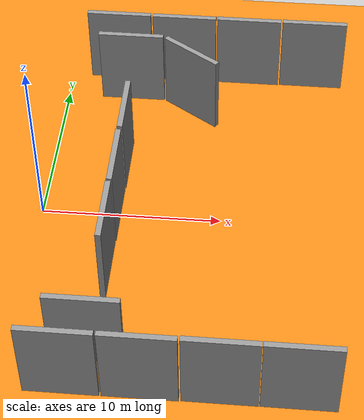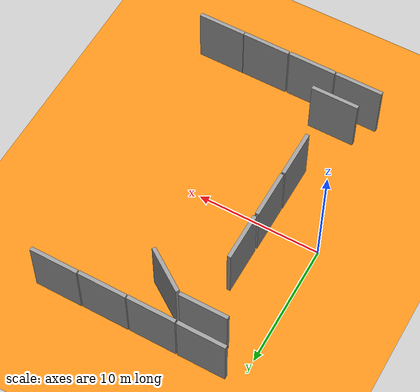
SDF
<sdf version="1.7">
 <world name="default">
  <model name="ground_plane">
   <static>1</static>
   <link name="link">
    <collision name="collision">
     <geometry><plane><normal>0 0 1</normal><size>100 100</size></plane></geometry>
     <surface>
      <contact><collide_bitmask>65535</collide_bitmask></contact>
      <friction><ode><mu>100</mu><mu2>50</mu2></ode></friction>
     </surface>
    </collision>
    <visual name="visual">
     <cast_shadows>0</cast_shadows>
     <geometry><plane><normal>0 0 1</normal><size>100 100</size></plane></geometry>
     <material>
      <script><uri>file://media/materials/scripts/gazebo.material</uri><name>Gazebo/Orange</name></script>
     </material>
    </visual>
   </link>
  </model>
  <model name="Wall1_clone_clone_0_clone_1">
   <link name="link_1">
    <inertial>
     <mass>5.76087</mass>
     <inertia><ixx>18.5128</ixx><ixy>0</ixy><ixz>0</ixz><iyy>11.4896</iyy><iyz>0</iyz><izz>7.11389</izz></inertia>
    </inertial>
    <pose>-0.387698 -7.91676 -1e-06 0 -0 1.56704</pose>
    <visual name="visual">
     <geometry><box><size>0.30743 3.83717 4.88248</size></box></geometry>
     <material>
      <lighting>1</lighting>
      <script><uri>file://media/materials/scripts/gazebo.material</uri><name>Gazebo/Grey</name></script>
      <shader type="pixel"/>
     </material>
    </visual>
    <collision name="collision">
     <geometry><box><size>0.30743 3.83717 4.88248</size></box></geometry>
     <surface>
      <friction>
       <ode><mu>1</mu><mu2>1</mu2><fdir1>0 0 0</fdir1><slip1>0</slip1><slip2>0</slip2></ode>
       <torsional>
        <coefficient>1</coefficient>
        <patch_radius>0</patch_radius>
        <surface_radius>0</surface_radius>
        <use_patch_radius>1</use_patch_radius>
        <ode><slip>0</slip></ode>
       </torsional>
      </friction>
      <bounce><restitution_coefficient>0</restitution_coefficient><threshold>1e+06</threshold></bounce>
      <contact>
       <collide_without_contact>0</collide_without_contact>
       <collide_without_contact_bitmask>1</collide_without_contact_bitmask>
       <collide_bitmask>1</collide_bitmask>
       <ode>
        <soft_cfm>0</soft_cfm>
        <soft_erp>0.2</soft_erp>
        <kp>1e+13</kp>
        <kd>1</kd>
        <max_vel>0.01</max_vel>
        <min_depth>0</min_depth>
       </ode>
       <bullet>
        <split_impulse>1</split_impulse>
        <split_impulse_penetration_threshold>-0.01</split_impulse_penetration_threshold>
        <soft_cfm>0</soft_cfm>
        <soft_erp>0.2</soft_erp>
        <kp>1e+13</kp>
        <kd>1</kd>
       </bullet>
      </contact>
     </surface>
    </collision>
   </link>
   <static>1</static>
   <pose>12.1571 -0.387014 2.43363 0 0 -1.56821</pose>
  </model>
  <model name="Wall1_clone_clone_0_clone">
   <link name="link_1">
    <inertial>
     <mass>5.76087</mass>
     <inertia><ixx>18.5128</ixx><ixy>0</ixy><ixz>0</ixz><iyy>11.4896</iyy><iyz>0</iyz><izz>7.11389</izz></inertia>
    </inertial>
    <pose>-0.387698 -7.91676 -1e-06 0 -0 1.56704</pose>
    <visual name="visual">
     <geometry><box><size>0.30743 3.83717 4.88248</size></box></geometry>
     <material>
      <lighting>1</lighting>
      <script><uri>file://media/materials/scripts/gazebo.material</uri><name>Gazebo/Grey</name></script>
      <shader type="pixel"/>
     </material>
    </visual>
    <collision name="collision">
     <geometry><box><size>0.30743 3.83717 4.88248</size></box></geometry>
     <surface>
      <friction>
       <ode><mu>1</mu><mu2>1</mu2><fdir1>0 0 0</fdir1><slip1>0</slip1><slip2>0</slip2></ode>
       <torsional>
        <coefficient>1</coefficient>
        <patch_radius>0</patch_radius>
        <surface_radius>0</surface_radius>
        <use_patch_radius>1</use_patch_radius>
        <ode><slip>0</slip></ode>
       </torsional>
      </friction>
      <bounce><restitution_coefficient>0</restitution_coefficient><threshold>1e+06</threshold></bounce>
      <contact>
       <collide_without_contact>0</collide_without_contact>
       <collide_without_contact_bitmask>1</collide_without_contact_bitmask>
       <collide_bitmask>1</collide_bitmask>
       <ode>
        <soft_cfm>0</soft_cfm>
        <soft_erp>0.2</soft_erp>
        <kp>1e+13</kp>
        <kd>1</kd>
        <max_vel>0.01</max_vel>
        <min_depth>0</min_depth>
       </ode>
       <bullet>
        <split_impulse>1</split_impulse>
        <split_impulse_penetration_threshold>-0.01</split_impulse_penetration_threshold>
        <soft_cfm>0</soft_cfm>
        <soft_erp>0.2</soft_erp>
        <kp>1e+13</kp>
        <kd>1</kd>
       </bullet>
      </contact>
     </surface>
    </collision>
   </link>
   <static>1</static>
   <pose>3.31561 -4.02634 2.43363 0 -0 0</pose>
  </model>
  <model name="Wall1_clone_clone_0_clone_clone">
   <link name="link_1">
    <inertial>
     <mass>5.76087</mass>
     <inertia><ixx>18.5128</ixx><ixy>0</ixy><ixz>0</ixz><iyy>11.4896</iyy><iyz>0</iyz><izz>7.11389</izz></inertia>
    </inertial>
    <pose>-0.387698 -7.91676 -1e-06 0 -0 1.56704</pose>
    <visual name="visual">
     <geometry><box><size>0.30743 3.83717 4.88248</size></box></geometry>
     <material>
      <lighting>1</lighting>
      <script><uri>file://media/materials/scripts/gazebo.material</uri><name>Gazebo/Grey</name></script>
      <shader type="pixel"/>
     </material>
    </visual>
    <collision name="collision">
     <geometry><box><size>0.30743 3.83717 4.88248</size></box></geometry>
     <surface>
      <friction>
       <ode><mu>1</mu><mu2>1</mu2><fdir1>0 0 0</fdir1><slip1>0</slip1><slip2>0</slip2></ode>
       <torsional>
        <coefficient>1</coefficient>
        <patch_radius>0</patch_radius>
        <surface_radius>0</surface_radius>
        <use_patch_radius>1</use_patch_radius>
        <ode><slip>0</slip></ode>
       </torsional>
      </friction>
      <bounce><restitution_coefficient>0</restitution_coefficient><threshold>1e+06</threshold></bounce>
      <contact>
       <collide_without_contact>0</collide_without_contact>
       <collide_without_contact_bitmask>1</collide_without_contact_bitmask>
       <collide_bitmask>1</collide_bitmask>
       <ode>
        <soft_cfm>0</soft_cfm>
        <soft_erp>0.2</soft_erp>
        <kp>1e+13</kp>
        <kd>1</kd>
        <max_vel>0.01</max_vel>
        <min_depth>0</min_depth>
       </ode>
       <bullet>
        <split_impulse>1</split_impulse>
        <split_impulse_penetration_threshold>-0.01</split_impulse_penetration_threshold>
        <soft_cfm>0</soft_cfm>
        <soft_erp>0.2</soft_erp>
        <kp>1e+13</kp>
        <kd>1</kd>
       </bullet>
      </contact>
     </surface>
    </collision>
   </link>
   <static>1</static>
   <pose>4.3285 -2.02303 2.43363 0 -0 0</pose>
  </model>
  <model name="Wall1_clone_clone_0_clone_clone_3">
   <link name="link_1">
    <inertial>
     <mass>5.76087</mass>
     <inertia><ixx>18.5128</ixx><ixy>0</ixy><ixz>0</ixz><iyy>11.4896</iyy><iyz>0</iyz><izz>7.11389</izz></inertia>
    </inertial>
    <pose>-0.387698 -7.91676 -1e-06 0 -0 1.56704</pose>
    <visual name="visual">
     <geometry><box><size>0.30743 3.83717 4.88248</size></box></geometry>
     <material>
      <lighting>1</lighting>
      <script><uri>file://media/materials/scripts/gazebo.material</uri><name>Gazebo/Grey</name></script>
      <shader type="pixel"/>
     </material>
    </visual>
    <collision name="collision">
     <geometry><box><size>0.30743 3.83717 4.88248</size></box></geometry>
     <surface>
      <friction>
       <ode><mu>1</mu><mu2>1</mu2><fdir1>0 0 0</fdir1><slip1>0</slip1><slip2>0</slip2></ode>
       <torsional>
        <coefficient>1</coefficient>
        <patch_radius>0</patch_radius>
        <surface_radius>0</surface_radius>
        <use_patch_radius>1</use_patch_radius>
        <ode><slip>0</slip></ode>
       </torsional>
      </friction>
      <bounce><restitution_coefficient>0</restitution_coefficient><threshold>1e+06</threshold></bounce>
      <contact>
       <collide_without_contact>0</collide_without_contact>
       <collide_without_contact_bitmask>1</collide_without_contact_bitmask>
       <collide_bitmask>1</collide_bitmask>
       <ode>
        <soft_cfm>0</soft_cfm>
        <soft_erp>0.2</soft_erp>
        <kp>1e+13</kp>
        <kd>1</kd>
        <max_vel>0.01</max_vel>
        <min_depth>0</min_depth>
       </ode>
       <bullet>
        <split_impulse>1</split_impulse>
        <split_impulse_penetration_threshold>-0.01</split_impulse_penetration_threshold>
        <soft_cfm>0</soft_cfm>
        <soft_erp>0.2</soft_erp>
        <kp>1e+13</kp>
        <kd>1</kd>
       </bullet>
      </contact>
     </surface>
    </collision>
   </link>
   <static>1</static>
   <pose>4.34502 18.0077 2.43363 0 -0 0</pose>
  </model>
  <model name="Wall1_clone_clone_0_clone_clone_4">
   <link name="link_1">
    <inertial>
     <mass>5.76087</mass>
     <inertia><ixx>18.5128</ixx><ixy>0</ixy><ixz>0</ixz><iyy>11.4896</iyy><iyz>0</iyz><izz>7.11389</izz></inertia>
    </inertial>
    <pose>-0.387698 -7.91676 -1e-06 0 -0 1.56704</pose>
    <visual name="visual">
     <geometry><box><size>0.30743 3.83717 4.88248</size></box></geometry>
     <material>
      <lighting>1</lighting>
      <script><uri>file://media/materials/scripts/gazebo.material</uri><name>Gazebo/Grey</name></script>
      <shader type="pixel"/>
     </material>
    </visual>
    <collision name="collision">
     <geometry><box><size>0.30743 3.83717 4.88248</size></box></geometry>
     <surface>
      <friction>
       <ode><mu>1</mu><mu2>1</mu2><fdir1>0 0 0</fdir1><slip1>0</slip1><slip2>0</slip2></ode>
       <torsional>
        <coefficient>1</coefficient>
        <patch_radius>0</patch_radius>
        <surface_radius>0</surface_radius>
        <use_patch_radius>1</use_patch_radius>
        <ode><slip>0</slip></ode>
       </torsional>
      </friction>
      <bounce><restitution_coefficient>0</restitution_coefficient><threshold>1e+06</threshold></bounce>
      <contact>
       <collide_without_contact>0</collide_without_contact>
       <collide_without_contact_bitmask>1</collide_without_contact_bitmask>
       <collide_bitmask>1</collide_bitmask>
       <ode>
        <soft_cfm>0</soft_cfm>
        <soft_erp>0.2</soft_erp>
        <kp>1e+13</kp>
        <kd>1</kd>
        <max_vel>0.01</max_vel>
        <min_depth>0</min_depth>
       </ode>
       <bullet>
        <split_impulse>1</split_impulse>
        <split_impulse_penetration_threshold>-0.01</split_impulse_penetration_threshold>
        <soft_cfm>0</soft_cfm>
        <soft_erp>0.2</soft_erp>
        <kp>1e+13</kp>
        <kd>1</kd>
       </bullet>
      </contact>
     </surface>
    </collision>
   </link>
   <static>1</static>
   <pose>3.39517 19.9942 2.43363 0 -0 0</pose>
  </model>
  <model name="Wall1_clone_clone_0_clone_clone_4_clone">
   <link name="link_1">
    <inertial>
     <mass>5.76087</mass>
     <inertia><ixx>18.5128</ixx><ixy>0</ixy><ixz>0</ixz><iyy>11.4896</iyy><iyz>0</iyz><izz>7.11389</izz></inertia>
    </inertial>
    <pose>-0.387698 -7.91676 -1e-06 0 -0 1.56704</pose>
    <visual name="visual">
     <geometry><box><size>0.30743 3.83717 4.88248</size></box></geometry>
     <material>
      <lighting>1</lighting>
      <script><uri>file://media/materials/scripts/gazebo.material</uri><name>Gazebo/Grey</name></script>
      <shader type="pixel"/>
     </material>
    </visual>
    <collision name="collision">
     <geometry><box><size>0.30743 3.83717 4.88248</size></box></geometry>
     <surface>
      <friction>
       <ode><mu>1</mu><mu2>1</mu2><fdir1>0 0 0</fdir1><slip1>0</slip1><slip2>0</slip2></ode>
       <torsional>
        <coefficient>1</coefficient>
        <patch_radius>0</patch_radius>
        <surface_radius>0</surface_radius>
        <use_patch_radius>1</use_patch_radius>
        <ode><slip>0</slip></ode>
       </torsional>
      </friction>
      <bounce><restitution_coefficient>0</restitution_coefficient><threshold>1e+06</threshold></bounce>
      <contact>
       <collide_without_contact>0</collide_without_contact>
       <collide_without_contact_bitmask>1</collide_without_contact_bitmask>
       <collide_bitmask>1</collide_bitmask>
       <ode>
        <soft_cfm>0</soft_cfm>
        <soft_erp>0.2</soft_erp>
        <kp>1e+13</kp>
        <kd>1</kd>
        <max_vel>0.01</max_vel>
        <min_depth>0</min_depth>
       </ode>
       <bullet>
        <split_impulse>1</split_impulse>
        <split_impulse_penetration_threshold>-0.01</split_impulse_penetration_threshold>
        <soft_cfm>0</soft_cfm>
        <soft_erp>0.2</soft_erp>
        <kp>1e+13</kp>
        <kd>1</kd>
       </bullet>
      </contact>
     </surface>
    </collision>
   </link>
   <static>1</static>
   <pose>7.3475 19.9738 2.43363 0 -0 0</pose>
  </model>
  <model name="Wall1_clone_clone_0_clone_clone_4_clone_1">
   <link name="link_1">
    <inertial>
     <mass>5.76087</mass>
     <inertia><ixx>18.5128</ixx><ixy>0</ixy><ixz>0</ixz><iyy>11.4896</iyy><iyz>0</iyz><izz>7.11389</izz></inertia>
    </inertial>
    <pose>-0.387698 -7.91676 -1e-06 0 -0 1.56704</pose>
    <visual name="visual">
     <geometry><box><size>0.30743 3.83717 4.88248</size></box></geometry>
     <material>
      <lighting>1</lighting>
      <script><uri>file://media/materials/scripts/gazebo.material</uri><name>Gazebo/Grey</name></script>
      <shader type="pixel"/>
     </material>
    </visual>
    <collision name="collision">
     <geometry><box><size>0.30743 3.83717 4.88248</size></box></geometry>
     <surface>
      <friction>
       <ode><mu>1</mu><mu2>1</mu2><fdir1>0 0 0</fdir1><slip1>0</slip1><slip2>0</slip2></ode>
       <torsional>
        <coefficient>1</coefficient>
        <patch_radius>0</patch_radius>
        <surface_radius>0</surface_radius>
        <use_patch_radius>1</use_patch_radius>
        <ode><slip>0</slip></ode>
       </torsional>
      </friction>
      <bounce><restitution_coefficient>0</restitution_coefficient><threshold>1e+06</threshold></bounce>
      <contact>
       <collide_without_contact>0</collide_without_contact>
       <collide_without_contact_bitmask>1</collide_without_contact_bitmask>
       <collide_bitmask>1</collide_bitmask>
       <ode>
        <soft_cfm>0</soft_cfm>
        <soft_erp>0.2</soft_erp>
        <kp>1e+13</kp>
        <kd>1</kd>
        <max_vel>0.01</max_vel>
        <min_depth>0</min_depth>
       </ode>
       <bullet>
        <split_impulse>1</split_impulse>
        <split_impulse_penetration_threshold>-0.01</split_impulse_penetration_threshold>
        <soft_cfm>0</soft_cfm>
        <soft_erp>0.2</soft_erp>
        <kp>1e+13</kp>
        <kd>1</kd>
       </bullet>
      </contact>
     </surface>
    </collision>
   </link>
   <static>1</static>
   <pose>7.24947 -4.03314 2.43363 0 -0 0</pose>
  </model>
  <model name="Wall1_clone_clone_0_clone_clone_3_clone">
   <link name="link_1">
    <inertial>
     <mass>5.76087</mass>
     <inertia><ixx>18.5128</ixx><ixy>0</ixy><ixz>0</ixz><iyy>11.4896</iyy><iyz>0</iyz><izz>7.11389</izz></inertia>
    </inertial>
    <pose>-0.387698 -7.91676 -1e-06 0 -0 1.56704</pose>
    <visual name="visual">
     <geometry><box><size>0.30743 3.83717 4.88248</size></box></geometry>
     <material>
      <lighting>1</lighting>
      <script><uri>file://media/materials/scripts/gazebo.material</uri><name>Gazebo/Grey</name></script>
      <shader type="pixel"/>
     </material>
    </visual>
    <collision name="collision">
     <geometry><box><size>0.30743 3.83717 4.88248</size></box></geometry>
     <surface>
      <friction>
       <ode><mu>1</mu><mu2>1</mu2><fdir1>0 0 0</fdir1><slip1>0</slip1><slip2>0</slip2></ode>
       <torsional>
        <coefficient>1</coefficient>
        <patch_radius>0</patch_radius>
        <surface_radius>0</surface_radius>
        <use_patch_radius>1</use_patch_radius>
        <ode><slip>0</slip></ode>
       </torsional>
      </friction>
      <bounce><restitution_coefficient>0</restitution_coefficient><threshold>1e+06</threshold></bounce>
      <contact>
       <collide_without_contact>0</collide_without_contact>
       <collide_without_contact_bitmask>1</collide_without_contact_bitmask>
       <collide_bitmask>1</collide_bitmask>
       <ode>
        <soft_cfm>0</soft_cfm>
        <soft_erp>0.2</soft_erp>
        <kp>1e+13</kp>
        <kd>1</kd>
        <max_vel>0.01</max_vel>
        <min_depth>0</min_depth>
       </ode>
       <bullet>
        <split_impulse>1</split_impulse>
        <split_impulse_penetration_threshold>-0.01</split_impulse_penetration_threshold>
        <soft_cfm>0</soft_cfm>
        <soft_erp>0.2</soft_erp>
        <kp>1e+13</kp>
        <kd>1</kd>
       </bullet>
      </contact>
     </surface>
    </collision>
   </link>
   <static>1</static>
   <pose>11.268 19.9739 2.43363 0 -0 0</pose>
  </model>
  <model name="Wall1_clone_clone_0_clone_clone_3_clone_0">
   <link name="link_1">
    <inertial>
     <mass>5.76087</mass>
     <inertia><ixx>18.5128</ixx><ixy>0</ixy><ixz>0</ixz><iyy>11.4896</iyy><iyz>0</iyz><izz>7.11389</izz></inertia>
    </inertial>
    <pose>-0.387698 -7.91676 -1e-06 0 -0 1.56704</pose>
    <visual name="visual">
     <geometry><box><size>0.30743 3.83717 4.88248</size></box></geometry>
     <material>
      <lighting>1</lighting>
      <script><uri>file://media/materials/scripts/gazebo.material</uri><name>Gazebo/Grey</name></script>
      <shader type="pixel"/>
     </material>
    </visual>
    <collision name="collision">
     <geometry><box><size>0.30743 3.83717 4.88248</size></box></geometry>
     <surface>
      <friction>
       <ode><mu>1</mu><mu2>1</mu2><fdir1>0 0 0</fdir1><slip1>0</slip1><slip2>0</slip2></ode>
       <torsional>
        <coefficient>1</coefficient>
        <patch_radius>0</patch_radius>
        <surface_radius>0</surface_radius>
        <use_patch_radius>1</use_patch_radius>
        <ode><slip>0</slip></ode>
       </torsional>
      </friction>
      <bounce><restitution_coefficient>0</restitution_coefficient><threshold>1e+06</threshold></bounce>
      <contact>
       <collide_without_contact>0</collide_without_contact>
       <collide_without_contact_bitmask>1</collide_without_contact_bitmask>
       <collide_bitmask>1</collide_bitmask>
       <ode>
        <soft_cfm>0</soft_cfm>
        <soft_erp>0.2</soft_erp>
        <kp>1e+13</kp>
        <kd>1</kd>
        <max_vel>0.01</max_vel>
        <min_depth>0</min_depth>
       </ode>
       <bullet>
        <split_impulse>1</split_impulse>
        <split_impulse_penetration_threshold>-0.01</split_impulse_penetration_threshold>
        <soft_cfm>0</soft_cfm>
        <soft_erp>0.2</soft_erp>
        <kp>1e+13</kp>
        <kd>1</kd>
       </bullet>
      </contact>
     </surface>
    </collision>
   </link>
   <static>1</static>
   <pose>15.1945 19.9902 2.43363 0 -0 0</pose>
  </model>
  <model name="Wall1_clone_clone_0_clone_clone_3_clone_1">
   <link name="link_1">
    <inertial>
     <mass>5.76087</mass>
     <inertia><ixx>18.5128</ixx><ixy>0</ixy><ixz>0</ixz><iyy>11.4896</iyy><iyz>0</iyz><izz>7.11389</izz></inertia>
    </inertial>
    <pose>-0.387698 -7.91676 -1e-06 0 -0 1.56704</pose>
    <visual name="visual">
     <geometry><box><size>0.30743 3.83717 4.88248</size></box></geometry>
     <material>
      <lighting>1</lighting>
      <script><uri>file://media/materials/scripts/gazebo.material</uri><name>Gazebo/Grey</name></script>
      <shader type="pixel"/>
     </material>
    </visual>
    <collision name="collision">
     <geometry><box><size>0.30743 3.83717 4.88248</size></box></geometry>
     <surface>
      <friction>
       <ode><mu>1</mu><mu2>1</mu2><fdir1>0 0 0</fdir1><slip1>0</slip1><slip2>0</slip2></ode>
       <torsional>
        <coefficient>1</coefficient>
        <patch_radius>0</patch_radius>
        <surface_radius>0</surface_radius>
        <use_patch_radius>1</use_patch_radius>
        <ode><slip>0</slip></ode>
       </torsional>
      </friction>
      <bounce><restitution_coefficient>0</restitution_coefficient><threshold>1e+06</threshold></bounce>
      <contact>
       <collide_without_contact>0</collide_without_contact>
       <collide_without_contact_bitmask>1</collide_without_contact_bitmask>
       <collide_bitmask>1</collide_bitmask>
       <ode>
        <soft_cfm>0</soft_cfm>
        <soft_erp>0.2</soft_erp>
        <kp>1e+13</kp>
        <kd>1</kd>
        <max_vel>0.01</max_vel>
        <min_depth>0</min_depth>
       </ode>
       <bullet>
        <split_impulse>1</split_impulse>
        <split_impulse_penetration_threshold>-0.01</split_impulse_penetration_threshold>
        <soft_cfm>0</soft_cfm>
        <soft_erp>0.2</soft_erp>
        <kp>1e+13</kp>
        <kd>1</kd>
       </bullet>
      </contact>
     </surface>
    </collision>
   </link>
   <static>1</static>
   <pose>11.1876 -4.01964 2.43363 0 -0 0</pose>
  </model>
  <model name="Wall1_clone_clone_0_clone_clone_3_clone_2">
   <link name="link_1">
    <inertial>
     <mass>5.76087</mass>
     <inertia><ixx>18.5128</ixx><ixy>0</ixy><ixz>0</ixz><iyy>11.4896</iyy><iyz>0</iyz><izz>7.11389</izz></inertia>
    </inertial>
    <pose>-0.387698 -7.91676 -1e-06 0 -0 1.56704</pose>
    <visual name="visual">
     <geometry><box><size>0.30743 3.83717 4.88248</size></box></geometry>
     <material>
      <lighting>1</lighting>
      <script><uri>file://media/materials/scripts/gazebo.material</uri><name>Gazebo/Grey</name></script>
      <shader type="pixel"/>
     </material>
    </visual>
    <collision name="collision">
     <geometry><box><size>0.30743 3.83717 4.88248</size></box></geometry>
     <surface>
      <friction>
       <ode><mu>1</mu><mu2>1</mu2><fdir1>0 0 0</fdir1><slip1>0</slip1><slip2>0</slip2></ode>
       <torsional>
        <coefficient>1</coefficient>
        <patch_radius>0</patch_radius>
        <surface_radius>0</surface_radius>
        <use_patch_radius>1</use_patch_radius>
        <ode><slip>0</slip></ode>
       </torsional>
      </friction>
      <bounce><restitution_coefficient>0</restitution_coefficient><threshold>1e+06</threshold></bounce>
      <contact>
       <collide_without_contact>0</collide_without_contact>
       <collide_without_contact_bitmask>1</collide_without_contact_bitmask>
       <collide_bitmask>1</collide_bitmask>
       <ode>
        <soft_cfm>0</soft_cfm>
        <soft_erp>0.2</soft_erp>
        <kp>1e+13</kp>
        <kd>1</kd>
        <max_vel>0.01</max_vel>
        <min_depth>0</min_depth>
       </ode>
       <bullet>
        <split_impulse>1</split_impulse>
        <split_impulse_penetration_threshold>-0.01</split_impulse_penetration_threshold>
        <soft_cfm>0</soft_cfm>
        <soft_erp>0.2</soft_erp>
        <kp>1e+13</kp>
        <kd>1</kd>
       </bullet>
      </contact>
     </surface>
    </collision>
   </link>
   <static>1</static>
   <pose>15.0669 -4.02784 2.43363 0 -0 0</pose>
  </model>
  <model name="Wall1_clone_clone_0_clone_clone_3_clone_5">
   <link name="link_1">
    <inertial>
     <mass>5.76087</mass>
     <inertia><ixx>18.5128</ixx><ixy>0</ixy><ixz>0</ixz><iyy>11.4896</iyy><iyz>0</iyz><izz>7.11389</izz></inertia>
    </inertial>
    <pose>-0.387698 -7.91676 -1e-06 0 -0 1.56704</pose>
    <visual name="visual">
     <geometry><box><size>0.30743 3.83717 4.88248</size></box></geometry>
     <material>
      <lighting>1</lighting>
      <script><uri>file://media/materials/scripts/gazebo.material</uri><name>Gazebo/Grey</name></script>
      <shader type="pixel"/>
     </material>
    </visual>
    <collision name="collision">
     <geometry><box><size>0.30743 3.83717 4.88248</size></box></geometry>
     <surface>
      <friction>
       <ode><mu>1</mu><mu2>1</mu2><fdir1>0 0 0</fdir1><slip1>0</slip1><slip2>0</slip2></ode>
       <torsional>
        <coefficient>1</coefficient>
        <patch_radius>0</patch_radius>
        <surface_radius>0</surface_radius>
        <use_patch_radius>1</use_patch_radius>
        <ode><slip>0</slip></ode>
       </torsional>
      </friction>
      <bounce><restitution_coefficient>0</restitution_coefficient><threshold>1e+06</threshold></bounce>
      <contact>
       <collide_without_contact>0</collide_without_contact>
       <collide_without_contact_bitmask>1</collide_without_contact_bitmask>
       <collide_bitmask>1</collide_bitmask>
       <ode>
        <soft_cfm>0</soft_cfm>
        <soft_erp>0.2</soft_erp>
        <kp>1e+13</kp>
        <kd>1</kd>
        <max_vel>0.01</max_vel>
        <min_depth>0</min_depth>
       </ode>
       <bullet>
        <split_impulse>1</split_impulse>
        <split_impulse_penetration_threshold>-0.01</split_impulse_penetration_threshold>
        <soft_cfm>0</soft_cfm>
        <soft_erp>0.2</soft_erp>
        <kp>1e+13</kp>
        <kd>1</kd>
       </bullet>
      </contact>
     </surface>
    </collision>
   </link>
   <static>1</static>
   <pose>12.4095 15.2657 2.43363 0 0 -0.59485</pose>
  </model>
  <model name="Wall1_clone_clone_0_clone_1_clone">
   <link name="link_1">
    <inertial>
     <mass>5.76087</mass>
     <inertia><ixx>18.5128</ixx><ixy>0</ixy><ixz>0</ixz><iyy>11.4896</iyy><iyz>0</iyz><izz>7.11389</izz></inertia>
    </inertial>
    <pose>-0.387698 -7.91676 -1e-06 0 -0 1.56704</pose>
    <visual name="visual">
     <geometry><box><size>0.30743 3.83717 4.88248</size></box></geometry>
     <material>
      <lighting>1</lighting>
      <script><uri>file://media/materials/scripts/gazebo.material</uri><name>Gazebo/Grey</name></script>
      <shader type="pixel"/>
     </material>
    </visual>
    <collision name="collision">
     <geometry><box><size>0.30743 3.83717 4.88248</size></box></geometry>
     <surface>
      <friction>
       <ode><mu>1</mu><mu2>1</mu2><fdir1>0 0 0</fdir1><slip1>0</slip1><slip2>0</slip2></ode>
       <torsional>
        <coefficient>1</coefficient>
        <patch_radius>0</patch_radius>
        <surface_radius>0</surface_radius>
        <use_patch_radius>1</use_patch_radius>
        <ode><slip>0</slip></ode>
       </torsional>
      </friction>
      <bounce><restitution_coefficient>0</restitution_coefficient><threshold>1e+06</threshold></bounce>
      <contact>
       <collide_without_contact>0</collide_without_contact>
       <collide_without_contact_bitmask>1</collide_without_contact_bitmask>
       <collide_bitmask>1</collide_bitmask>
       <ode>
        <soft_cfm>0</soft_cfm>
        <soft_erp>0.2</soft_erp>
        <kp>1e+13</kp>
        <kd>1</kd>
        <max_vel>0.01</max_vel>
        <min_depth>0</min_depth>
       </ode>
       <bullet>
        <split_impulse>1</split_impulse>
        <split_impulse_penetration_threshold>-0.01</split_impulse_penetration_threshold>
        <soft_cfm>0</soft_cfm>
        <soft_erp>0.2</soft_erp>
        <kp>1e+13</kp>
        <kd>1</kd>
       </bullet>
      </contact>
     </surface>
    </collision>
   </link>
   <static>1</static>
   <pose>12.1995 3.65718 2.43363 0 0 -1.56821</pose>
  </model>
  <model name="Wall1_clone_clone_0_clone_1_clone_0">
   <link name="link_1">
    <inertial>
     <mass>5.76087</mass>
     <inertia><ixx>18.5128</ixx><ixy>0</ixy><ixz>0</ixz><iyy>11.4896</iyy><iyz>0</iyz><izz>7.11389</izz></inertia>
    </inertial>
    <pose>-0.387698 -7.91676 -1e-06 0 -0 1.56704</pose>
    <visual name="visual">
     <geometry><box><size>0.30743 3.83717 4.88248</size></box></geometry>
     <material>
      <lighting>1</lighting>
      <script><uri>file://media/materials/scripts/gazebo.material</uri><name>Gazebo/Grey</name></script>
      <shader type="pixel"/>
     </material>
    </visual>
    <collision name="collision">
     <geometry><box><size>0.30743 3.83717 4.88248</size></box></geometry>
     <surface>
      <friction>
       <ode><mu>1</mu><mu2>1</mu2><fdir1>0 0 0</fdir1><slip1>0</slip1><slip2>0</slip2></ode>
       <torsional>
        <coefficient>1</coefficient>
        <patch_radius>0</patch_radius>
        <surface_radius>0</surface_radius>
        <use_patch_radius>1</use_patch_radius>
        <ode><slip>0</slip></ode>
       </torsional>
      </friction>
      <bounce><restitution_coefficient>0</restitution_coefficient><threshold>1e+06</threshold></bounce>
      <contact>
       <collide_without_contact>0</collide_without_contact>
       <collide_without_contact_bitmask>1</collide_without_contact_bitmask>
       <collide_bitmask>1</collide_bitmask>
       <ode>
        <soft_cfm>0</soft_cfm>
        <soft_erp>0.2</soft_erp>
        <kp>1e+13</kp>
        <kd>1</kd>
        <max_vel>0.01</max_vel>
        <min_depth>0</min_depth>
       </ode>
       <bullet>
        <split_impulse>1</split_impulse>
        <split_impulse_penetration_threshold>-0.01</split_impulse_penetration_threshold>
        <soft_cfm>0</soft_cfm>
        <soft_erp>0.2</soft_erp>
        <kp>1e+13</kp>
        <kd>1</kd>
       </bullet>
      </contact>
     </surface>
    </collision>
   </link>
   <static>1</static>
   <pose>12.1201 -4.36087 2.43363 0 0 -1.56821</pose>
  </model>
 </world>
</sdf>
